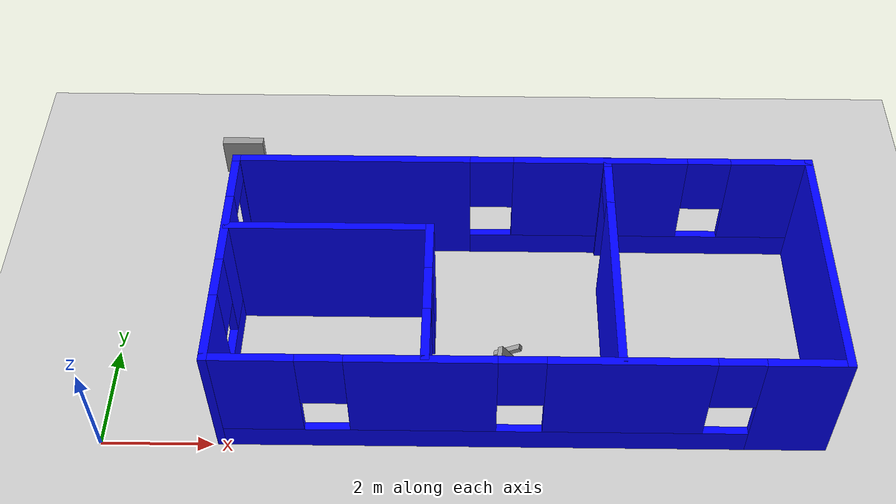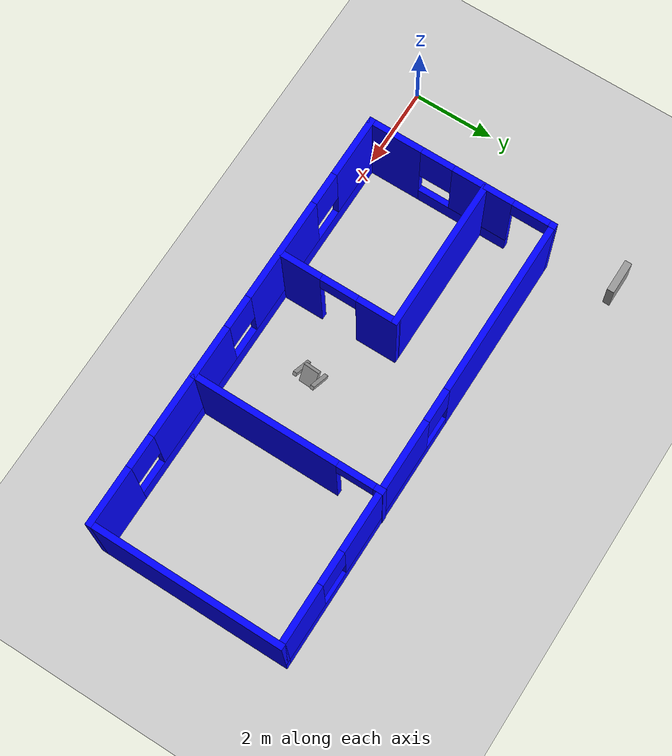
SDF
<sdf version="1.6">
 <world name="default">
  <model name="ground_plane">
   <static>1</static>
   <link name="link">
    <collision name="collision">
     <geometry><plane><normal>0 0 1</normal><size>100 100</size></plane></geometry>
     <surface>
      <contact><collide_bitmask>65535</collide_bitmask></contact>
      <friction><ode><mu>100</mu><mu2>50</mu2></ode></friction>
     </surface>
    </collision>
    <visual name="visual">
     <cast_shadows>0</cast_shadows>
     <geometry><plane><normal>0 0 1</normal><size>100 100</size></plane></geometry>
     <material>
      <script><uri>file://media/materials/scripts/gazebo.material</uri><name>Gazebo/Grey</name></script>
     </material>
    </visual>
   </link>
  </model>
  <model name="building">
   <pose>7.4627 2.38493 0 0 -0 0</pose>
   <link name="Wall_10">
    <collision name="Wall_10_Collision">
     <geometry><box><size>4.75 0.15 2.5</size></box></geometry>
     <pose>0 0 1.25 0 -0 0</pose>
    </collision>
    <visual name="Wall_10_Visual">
     <pose>0 0 1.25 0 -0 0</pose>
     <geometry><box><size>4.75 0.15 2.5</size></box></geometry>
     <material>
      <script><uri>file://media/materials/scripts/gazebo.material</uri><name>Gazebo/Grey</name></script>
      <ambient>0 0 1 1</ambient>
     </material>
     <meta><layer>0</layer></meta>
    </visual>
    <pose>5.3 -0.005 0 0 0 -1.5708</pose>
   </link>
   <link name="Wall_11">
    <pose>0 -2.305 0 0 -0 3.14159</pose>
    <visual name="Wall_11_Visual_0">
     <pose>-4.6525 0 1.25 0 -0 0</pose>
     <geometry><box><size>1.445 0.15 2.5</size></box></geometry>
     <material>
      <script><uri>file://media/materials/scripts/gazebo.material</uri><name>Gazebo/Grey</name></script>
      <ambient>0 0 1 1</ambient>
     </material>
     <meta><layer>0</layer></meta>
    </visual>
    <collision name="Wall_11_Collision_0">
     <geometry><box><size>1.445 0.15 2.5</size></box></geometry>
     <pose>-4.6525 0 1.25 0 -0 0</pose>
    </collision>
    <visual name="Wall_11_Visual_1">
     <pose>0.7225 0 0.25 0 -0 0</pose>
     <geometry><box><size>9.305 0.15 0.5</size></box></geometry>
     <material>
      <script><uri>file://media/materials/scripts/gazebo.material</uri><name>Gazebo/Grey</name></script>
      <ambient>0 0 1 1</ambient>
     </material>
     <meta><layer>0</layer></meta>
    </visual>
    <collision name="Wall_11_Collision_1">
     <geometry><box><size>9.305 0.15 0.5</size></box></geometry>
     <pose>0.7225 0 0.25 0 -0 0</pose>
    </collision>
    <visual name="Wall_11_Visual_2">
     <pose>-1.735 0 1.5 0 -0 0</pose>
     <geometry><box><size>2.79 0.15 2</size></box></geometry>
     <material>
      <script><uri>file://media/materials/scripts/gazebo.material</uri><name>Gazebo/Grey</name></script>
      <ambient>0 0 1 1</ambient>
     </material>
     <meta><layer>0</layer></meta>
    </visual>
    <collision name="Wall_11_Collision_2">
     <geometry><box><size>2.79 0.15 2</size></box></geometry>
     <pose>-1.735 0 1.5 0 -0 0</pose>
    </collision>
    <visual name="Wall_11_Visual_3">
     <pose>1.73 0 1.5 0 -0 0</pose>
     <geometry><box><size>2.54 0.15 2</size></box></geometry>
     <material>
      <script><uri>file://media/materials/scripts/gazebo.material</uri><name>Gazebo/Grey</name></script>
      <ambient>0 0 1 1</ambient>
     </material>
     <meta><layer>0</layer></meta>
    </visual>
    <collision name="Wall_11_Collision_3">
     <geometry><box><size>2.54 0.15 2</size></box></geometry>
     <pose>1.73 0 1.5 0 -0 0</pose>
    </collision>
    <visual name="Wall_11_Visual_4">
     <pose>4.5875 0 1.5 0 -0 0</pose>
     <geometry><box><size>1.575 0.15 2</size></box></geometry>
     <material>
      <script><uri>file://media/materials/scripts/gazebo.material</uri><name>Gazebo/Grey</name></script>
      <ambient>0 0 1 1</ambient>
     </material>
     <meta><layer>0</layer></meta>
    </visual>
    <collision name="Wall_11_Collision_4">
     <geometry><box><size>1.575 0.15 2</size></box></geometry>
     <pose>4.5875 0 1.5 0 -0 0</pose>
    </collision>
    <visual name="Wall_11_Visual_5">
     <pose>-3.53 0 1.9 0 -0 0</pose>
     <geometry><box><size>0.8 0.15 1.2</size></box></geometry>
     <material>
      <script><uri>file://media/materials/scripts/gazebo.material</uri><name>Gazebo/Grey</name></script>
      <ambient>0 0 1 1</ambient>
     </material>
     <meta><layer>0</layer></meta>
    </visual>
    <collision name="Wall_11_Collision_5">
     <geometry><box><size>0.8 0.15 1.2</size></box></geometry>
     <pose>-3.53 0 1.9 0 -0 0</pose>
    </collision>
    <visual name="Wall_11_Visual_6">
     <pose>0.06 0 1.9 0 -0 0</pose>
     <geometry><box><size>0.8 0.15 1.2</size></box></geometry>
     <material>
      <script><uri>file://media/materials/scripts/gazebo.material</uri><name>Gazebo/Grey</name></script>
      <ambient>0 0 1 1</ambient>
     </material>
     <meta><layer>0</layer></meta>
    </visual>
    <collision name="Wall_11_Collision_6">
     <geometry><box><size>0.8 0.15 1.2</size></box></geometry>
     <pose>0.06 0 1.9 0 -0 0</pose>
    </collision>
    <visual name="Wall_11_Visual_7">
     <pose>3.4 0 1.9 0 -0 0</pose>
     <geometry><box><size>0.8 0.15 1.2</size></box></geometry>
     <material>
      <script><uri>file://media/materials/scripts/gazebo.material</uri><name>Gazebo/Grey</name></script>
      <ambient>0 0 1 1</ambient>
     </material>
     <meta><layer>0</layer></meta>
    </visual>
    <collision name="Wall_11_Collision_7">
     <geometry><box><size>0.8 0.15 1.2</size></box></geometry>
     <pose>3.4 0 1.9 0 -0 0</pose>
    </collision>
   </link>
   <link name="Wall_12">
    <pose>-5.3 -0.005 0 0 -0 1.5708</pose>
    <visual name="Wall_12_Visual_0">
     <pose>-1.6825 0 1.25 0 -0 0</pose>
     <geometry><box><size>1.385 0.15 2.5</size></box></geometry>
     <material>
      <script><uri>file://media/materials/scripts/gazebo.material</uri><name>Gazebo/Grey</name></script>
      <ambient>0 0 1 1</ambient>
     </material>
     <meta><layer>0</layer></meta>
    </visual>
    <collision name="Wall_12_Collision_0">
     <geometry><box><size>1.385 0.15 2.5</size></box></geometry>
     <pose>-1.6825 0 1.25 0 -0 0</pose>
    </collision>
    <visual name="Wall_12_Visual_1">
     <pose>2.2925 0 1.25 0 -0 0</pose>
     <geometry><box><size>0.165 0.15 2.5</size></box></geometry>
     <material>
      <script><uri>file://media/materials/scripts/gazebo.material</uri><name>Gazebo/Grey</name></script>
      <ambient>0 0 1 1</ambient>
     </material>
     <meta><layer>0</layer></meta>
    </visual>
    <collision name="Wall_12_Collision_1">
     <geometry><box><size>0.165 0.15 2.5</size></box></geometry>
     <pose>2.2925 0 1.25 0 -0 0</pose>
    </collision>
    <visual name="Wall_12_Visual_2">
     <pose>0.16 0 0.25 0 -0 0</pose>
     <geometry><box><size>2.3 0.15 0.5</size></box></geometry>
     <material>
      <script><uri>file://media/materials/scripts/gazebo.material</uri><name>Gazebo/Grey</name></script>
      <ambient>0 0 1 1</ambient>
     </material>
     <meta><layer>0</layer></meta>
    </visual>
    <collision name="Wall_12_Collision_2">
     <geometry><box><size>2.3 0.15 0.5</size></box></geometry>
     <pose>0.16 0 0.25 0 -0 0</pose>
    </collision>
    <visual name="Wall_12_Visual_3">
     <pose>0.56 0 1.5 0 -0 0</pose>
     <geometry><box><size>1.5 0.15 2</size></box></geometry>
     <material>
      <script><uri>file://media/materials/scripts/gazebo.material</uri><name>Gazebo/Grey</name></script>
      <ambient>0 0 1 1</ambient>
     </material>
     <meta><layer>0</layer></meta>
    </visual>
    <collision name="Wall_12_Collision_3">
     <geometry><box><size>1.5 0.15 2</size></box></geometry>
     <pose>0.56 0 1.5 0 -0 0</pose>
    </collision>
    <visual name="Wall_12_Visual_4">
     <pose>-0.59 0 1.9 0 -0 0</pose>
     <geometry><box><size>0.8 0.15 1.2</size></box></geometry>
     <material>
      <script><uri>file://media/materials/scripts/gazebo.material</uri><name>Gazebo/Grey</name></script>
      <ambient>0 0 1 1</ambient>
     </material>
     <meta><layer>0</layer></meta>
    </visual>
    <collision name="Wall_12_Collision_4">
     <geometry><box><size>0.8 0.15 1.2</size></box></geometry>
     <pose>-0.59 0 1.9 0 -0 0</pose>
    </collision>
    <visual name="Wall_12_Visual_5">
     <pose>1.76 0 2.25 0 -0 0</pose>
     <geometry><box><size>0.9 0.15 0.5</size></box></geometry>
     <material>
      <script><uri>file://media/materials/scripts/gazebo.material</uri><name>Gazebo/Grey</name></script>
      <ambient>0 0 1 1</ambient>
     </material>
     <meta><layer>0</layer></meta>
    </visual>
    <collision name="Wall_12_Collision_5">
     <geometry><box><size>0.9 0.15 0.5</size></box></geometry>
     <pose>1.76 0 2.25 0 -0 0</pose>
    </collision>
   </link>
   <link name="Wall_16">
    <collision name="Wall_16_Collision">
     <geometry><box><size>3.75 0.15 2.5</size></box></geometry>
     <pose>0 0 1.25 0 -0 0</pose>
    </collision>
    <visual name="Wall_16_Visual">
     <pose>0 0 1.25 0 -0 0</pose>
     <geometry><box><size>3.75 0.15 2.5</size></box></geometry>
     <material>
      <script><uri>file://media/materials/scripts/gazebo.material</uri><name>Gazebo/Grey</name></script>
      <ambient>0 0 1 1</ambient>
     </material>
     <meta><layer>0</layer></meta>
    </visual>
    <pose>-3.46 0.605 0 0 -0 0</pose>
   </link>
   <link name="Wall_17">
    <pose>-1.66 -0.82 0 0 0 -1.5708</pose>
    <visual name="Wall_17_Visual_0">
     <pose>-0.9875 0 1.25 0 -0 0</pose>
     <geometry><box><size>1.025 0.15 2.5</size></box></geometry>
     <material>
      <script><uri>file://media/materials/scripts/gazebo.material</uri><name>Gazebo/Grey</name></script>
      <ambient>0 0 1 1</ambient>
     </material>
     <meta><layer>0</layer></meta>
    </visual>
    <collision name="Wall_17_Collision_0">
     <geometry><box><size>1.025 0.15 2.5</size></box></geometry>
     <pose>-0.9875 0 1.25 0 -0 0</pose>
    </collision>
    <visual name="Wall_17_Visual_1">
     <pose>0.9625 0 1.25 0 -0 0</pose>
     <geometry><box><size>1.075 0.15 2.5</size></box></geometry>
     <material>
      <script><uri>file://media/materials/scripts/gazebo.material</uri><name>Gazebo/Grey</name></script>
      <ambient>0 0 1 1</ambient>
     </material>
     <meta><layer>0</layer></meta>
    </visual>
    <collision name="Wall_17_Collision_1">
     <geometry><box><size>1.075 0.15 2.5</size></box></geometry>
     <pose>0.9625 0 1.25 0 -0 0</pose>
    </collision>
    <visual name="Wall_17_Visual_2">
     <pose>-0.025 0 2.25 0 -0 0</pose>
     <geometry><box><size>0.9 0.15 0.5</size></box></geometry>
     <material>
      <script><uri>file://media/materials/scripts/gazebo.material</uri><name>Gazebo/Grey</name></script>
      <ambient>0 0 1 1</ambient>
     </material>
     <meta><layer>0</layer></meta>
    </visual>
    <collision name="Wall_17_Collision_2">
     <geometry><box><size>0.9 0.15 0.5</size></box></geometry>
     <pose>-0.025 0 2.25 0 -0 0</pose>
    </collision>
   </link>
   <link name="Wall_19">
    <pose>1.58 0.005 0 0 0 -1.5708</pose>
    <visual name="Wall_19_Visual_0">
     <pose>-2.2575 0 1.25 0 -0 0</pose>
     <geometry><box><size>0.235 0.15 2.5</size></box></geometry>
     <material>
      <script><uri>file://media/materials/scripts/gazebo.material</uri><name>Gazebo/Grey</name></script>
      <ambient>0 0 1 1</ambient>
     </material>
     <meta><layer>0</layer></meta>
    </visual>
    <collision name="Wall_19_Collision_0">
     <geometry><box><size>0.235 0.15 2.5</size></box></geometry>
     <pose>-2.2575 0 1.25 0 -0 0</pose>
    </collision>
    <visual name="Wall_19_Visual_1">
     <pose>0.5675 0 1.25 0 -0 0</pose>
     <geometry><box><size>3.615 0.15 2.5</size></box></geometry>
     <material>
      <script><uri>file://media/materials/scripts/gazebo.material</uri><name>Gazebo/Grey</name></script>
      <ambient>0 0 1 1</ambient>
     </material>
     <meta><layer>0</layer></meta>
    </visual>
    <collision name="Wall_19_Collision_1">
     <geometry><box><size>3.615 0.15 2.5</size></box></geometry>
     <pose>0.5675 0 1.25 0 -0 0</pose>
    </collision>
    <visual name="Wall_19_Visual_2">
     <pose>-1.69 0 2.25 0 -0 0</pose>
     <geometry><box><size>0.9 0.15 0.5</size></box></geometry>
     <material>
      <script><uri>file://media/materials/scripts/gazebo.material</uri><name>Gazebo/Grey</name></script>
      <ambient>0 0 1 1</ambient>
     </material>
     <meta><layer>0</layer></meta>
    </visual>
    <collision name="Wall_19_Collision_2">
     <geometry><box><size>0.9 0.15 0.5</size></box></geometry>
     <pose>-1.69 0 2.25 0 -0 0</pose>
    </collision>
   </link>
   <link name="Wall_9">
    <pose>0 2.295 0 0 -0 0</pose>
    <visual name="Wall_9_Visual_0">
     <pose>-3.1675 0 1.25 0 -0 0</pose>
     <geometry><box><size>4.415 0.15 2.5</size></box></geometry>
     <material>
      <script><uri>file://media/materials/scripts/gazebo.material</uri><name>Gazebo/Grey</name></script>
      <ambient>0 0 1 1</ambient>
     </material>
     <meta><layer>0</layer></meta>
    </visual>
    <collision name="Wall_9_Collision_0">
     <geometry><box><size>4.415 0.15 2.5</size></box></geometry>
     <pose>-3.1675 0 1.25 0 -0 0</pose>
    </collision>
    <visual name="Wall_9_Visual_1">
     <pose>2.2075 0 0.25 0 -0 0</pose>
     <geometry><box><size>6.335 0.15 0.5</size></box></geometry>
     <material>
      <script><uri>file://media/materials/scripts/gazebo.material</uri><name>Gazebo/Grey</name></script>
      <ambient>0 0 1 1</ambient>
     </material>
     <meta><layer>0</layer></meta>
    </visual>
    <collision name="Wall_9_Collision_1">
     <geometry><box><size>6.335 0.15 0.5</size></box></geometry>
     <pose>2.2075 0 0.25 0 -0 0</pose>
    </collision>
    <visual name="Wall_9_Visual_2">
     <pose>1.45 0 1.5 0 -0 0</pose>
     <geometry><box><size>3.22 0.15 2</size></box></geometry>
     <material>
      <script><uri>file://media/materials/scripts/gazebo.material</uri><name>Gazebo/Grey</name></script>
      <ambient>0 0 1 1</ambient>
     </material>
     <meta><layer>0</layer></meta>
    </visual>
    <collision name="Wall_9_Collision_2">
     <geometry><box><size>3.22 0.15 2</size></box></geometry>
     <pose>1.45 0 1.5 0 -0 0</pose>
    </collision>
    <visual name="Wall_9_Visual_3">
     <pose>4.6175 0 1.5 0 -0 0</pose>
     <geometry><box><size>1.515 0.15 2</size></box></geometry>
     <material>
      <script><uri>file://media/materials/scripts/gazebo.material</uri><name>Gazebo/Grey</name></script>
      <ambient>0 0 1 1</ambient>
     </material>
     <meta><layer>0</layer></meta>
    </visual>
    <collision name="Wall_9_Collision_3">
     <geometry><box><size>1.515 0.15 2</size></box></geometry>
     <pose>4.6175 0 1.5 0 -0 0</pose>
    </collision>
    <visual name="Wall_9_Visual_4">
     <pose>-0.56 0 1.9 0 -0 0</pose>
     <geometry><box><size>0.8 0.15 1.2</size></box></geometry>
     <material>
      <script><uri>file://media/materials/scripts/gazebo.material</uri><name>Gazebo/Grey</name></script>
      <ambient>0 0 1 1</ambient>
     </material>
     <meta><layer>0</layer></meta>
    </visual>
    <collision name="Wall_9_Collision_4">
     <geometry><box><size>0.8 0.15 1.2</size></box></geometry>
     <pose>-0.56 0 1.9 0 -0 0</pose>
    </collision>
    <visual name="Wall_9_Visual_5">
     <pose>3.46 0 1.9 0 -0 0</pose>
     <geometry><box><size>0.8 0.15 1.2</size></box></geometry>
     <material>
      <script><uri>file://media/materials/scripts/gazebo.material</uri><name>Gazebo/Grey</name></script>
      <ambient>0 0 1 1</ambient>
     </material>
     <meta><layer>0</layer></meta>
    </visual>
    <collision name="Wall_9_Collision_5">
     <geometry><box><size>0.8 0.15 1.2</size></box></geometry>
     <pose>3.46 0 1.9 0 -0 0</pose>
    </collision>
   </link>
   <link name="Window_6">
    <collision name="Window_6_Collision">
     <geometry><box><size>0.8 0.17 0.8</size></box></geometry>
     <pose>0 0 0.4 0 -0 0</pose>
    </collision>
    <visual name="Window_6_Visual">
     <pose>0 0 0.4 0 -0 0</pose>
     <geometry><box><size>0.8 0.17 0.8</size></box></geometry>
     <material>
      <script><uri>file://media/materials/scripts/gazebo.material</uri><name>Gazebo/Grey</name></script>
     </material>
    </visual>
    <pose>-5.53041 3.979 0.5 0 -0 0</pose>
   </link>
   <static>1</static>
  </model>
  <model name="robot">
   <link name="link_0">
    <pose>0.01834 -0.001591 0 0 -0 0</pose>
    <inertial>
     <mass>1</mass>
     <inertia>
      <ixx>0.166667</ixx>
      <ixy>0</ixy>
      <ixz>0</ixz>
      <iyy>0.166667</iyy>
      <iyz>0</iyz>
      <izz>0.166667</izz>
     </inertia>
    </inertial>
    <visual name="visual">
     <geometry><box><size>0.5 0.4 0.1</size></box></geometry>
     <material>
      <lighting>1</lighting>
      <script><uri>file://media/materials/scripts/gazebo.material</uri><name>Gazebo/Grey</name></script>
      <shader type="pixel"><normal_map>__default__</normal_map></shader>
      <ambient>0.3 0.3 0.3 1</ambient>
      <diffuse>0.7 0.7 0.7 1</diffuse>
      <specular>0.01 0.01 0.01 1</specular>
      <emissive>0 0 0 1</emissive>
     </material>
    </visual>
    <collision name="collision">
     <geometry><box><size>0.5 0.4 0.1</size></box></geometry>
     <surface>
      <friction>
       <ode><mu>1</mu><mu2>1</mu2><fdir1>0 0 0</fdir1><slip1>0</slip1><slip2>0</slip2></ode>
       <torsional>
        <coefficient>1</coefficient>
        <patch_radius>0</patch_radius>
        <surface_radius>0</surface_radius>
        <use_patch_radius>1</use_patch_radius>
        <ode><slip>0</slip></ode>
       </torsional>
      </friction>
      <bounce><restitution_coefficient>0</restitution_coefficient><threshold>1e+06</threshold></bounce>
      <contact>
       <collide_without_contact>0</collide_without_contact>
       <collide_without_contact_bitmask>1</collide_without_contact_bitmask>
       <collide_bitmask>1</collide_bitmask>
       <ode>
        <soft_cfm>0</soft_cfm>
        <soft_erp>0.2</soft_erp>
        <kp>1e+13</kp>
        <kd>1</kd>
        <max_vel>0.01</max_vel>
        <min_depth>0</min_depth>
       </ode>
       <bullet>
        <split_impulse>1</split_impulse>
        <split_impulse_penetration_threshold>-0.01</split_impulse_penetration_threshold>
        <soft_cfm>0</soft_cfm>
        <soft_erp>0.2</soft_erp>
        <kp>1e+13</kp>
        <kd>1</kd>
       </bullet>
      </contact>
     </surface>
    </collision>
   </link>
   <link name="link_4">
    <pose>-0.03668 -0.246818 0 0 -0 0</pose>
    <inertial>
     <mass>1</mass>
     <inertia>
      <ixx>0.166667</ixx>
      <ixy>0</ixy>
      <ixz>0</ixz>
      <iyy>0.166667</iyy>
      <iyz>0</iyz>
      <izz>0.166667</izz>
     </inertia>
    </inertial>
    <visual name="visual">
     <geometry><box><size>0.1 0.1 0.55</size></box></geometry>
     <material>
      <lighting>1</lighting>
      <script><uri>file://media/materials/scripts/gazebo.material</uri><name>Gazebo/Grey</name></script>
      <shader type="pixel"><normal_map>__default__</normal_map></shader>
      <ambient>0.3 0.3 0.3 1</ambient>
      <diffuse>0.7 0.7 0.7 1</diffuse>
      <specular>0.01 0.01 0.01 1</specular>
      <emissive>0 0 0 1</emissive>
     </material>
    </visual>
    <collision name="collision">
     <geometry><box><size>0.1 0.1 0.55</size></box></geometry>
     <surface>
      <friction>
       <ode><mu>1</mu><mu2>1</mu2><fdir1>0 0 0</fdir1><slip1>0</slip1><slip2>0</slip2></ode>
       <torsional>
        <coefficient>1</coefficient>
        <patch_radius>0</patch_radius>
        <surface_radius>0</surface_radius>
        <use_patch_radius>1</use_patch_radius>
        <ode><slip>0</slip></ode>
       </torsional>
      </friction>
      <bounce><restitution_coefficient>0</restitution_coefficient><threshold>1e+06</threshold></bounce>
      <contact>
       <collide_without_contact>0</collide_without_contact>
       <collide_without_contact_bitmask>1</collide_without_contact_bitmask>
       <collide_bitmask>1</collide_bitmask>
       <ode>
        <soft_cfm>0</soft_cfm>
        <soft_erp>0.2</soft_erp>
        <kp>1e+13</kp>
        <kd>1</kd>
        <max_vel>0.01</max_vel>
        <min_depth>0</min_depth>
       </ode>
       <bullet>
        <split_impulse>1</split_impulse>
        <split_impulse_penetration_threshold>-0.01</split_impulse_penetration_threshold>
        <soft_cfm>0</soft_cfm>
        <soft_erp>0.2</soft_erp>
        <kp>1e+13</kp>
        <kd>1</kd>
       </bullet>
      </contact>
     </surface>
    </collision>
   </link>
   <link name="link_4_clone">
    <pose>0.01834 0.248409 0 0 -0 0</pose>
    <inertial>
     <mass>1</mass>
     <inertia>
      <ixx>0.166667</ixx>
      <ixy>0</ixy>
      <ixz>0</ixz>
      <iyy>0.166667</iyy>
      <iyz>0</iyz>
      <izz>0.166667</izz>
     </inertia>
    </inertial>
    <visual name="visual">
     <geometry><box><size>0.1 0.1 0.55</size></box></geometry>
     <material>
      <lighting>1</lighting>
      <script><uri>file://media/materials/scripts/gazebo.material</uri><name>Gazebo/Grey</name></script>
      <shader type="pixel"><normal_map>__default__</normal_map></shader>
      <ambient>0.3 0.3 0.3 1</ambient>
      <diffuse>0.7 0.7 0.7 1</diffuse>
      <specular>0.01 0.01 0.01 1</specular>
      <emissive>0 0 0 1</emissive>
     </material>
    </visual>
    <collision name="collision">
     <geometry><box><size>0.1 0.1 0.55</size></box></geometry>
     <surface>
      <friction>
       <ode><mu>1</mu><mu2>1</mu2><fdir1>0 0 0</fdir1><slip1>0</slip1><slip2>0</slip2></ode>
       <torsional>
        <coefficient>1</coefficient>
        <patch_radius>0</patch_radius>
        <surface_radius>0</surface_radius>
        <use_patch_radius>1</use_patch_radius>
        <ode><slip>0</slip></ode>
       </torsional>
      </friction>
      <bounce><restitution_coefficient>0</restitution_coefficient><threshold>1e+06</threshold></bounce>
      <contact>
       <collide_without_contact>0</collide_without_contact>
       <collide_without_contact_bitmask>1</collide_without_contact_bitmask>
       <collide_bitmask>1</collide_bitmask>
       <ode>
        <soft_cfm>0</soft_cfm>
        <soft_erp>0.2</soft_erp>
        <kp>1e+13</kp>
        <kd>1</kd>
        <max_vel>0.01</max_vel>
        <min_depth>0</min_depth>
       </ode>
       <bullet>
        <split_impulse>1</split_impulse>
        <split_impulse_penetration_threshold>-0.01</split_impulse_penetration_threshold>
        <soft_cfm>0</soft_cfm>
        <soft_erp>0.2</soft_erp>
        <kp>1e+13</kp>
        <kd>1</kd>
       </bullet>
      </contact>
     </surface>
    </collision>
   </link>
   <joint name="link_0_JOINT_0" type="revolute">
    <parent>link_0</parent>
    <child>link_4</child>
    <axis>
     <xyz>0 1 0</xyz>
     <use_parent_model_frame>0</use_parent_model_frame>
     <limit>
      <lower>-1.79769e+308</lower>
      <upper>1.79769e+308</upper>
      <effort>-1</effort>
      <velocity>-1</velocity>
     </limit>
     <dynamics>
      <spring_reference>0</spring_reference>
      <spring_stiffness>0</spring_stiffness>
      <damping>0</damping>
     </dynamics>
    </axis>
    <physics>
     <ode><limit><cfm>0</cfm><erp>0.2</erp></limit><suspension><cfm>0</cfm><erp>0.2</erp></suspension></ode>
    </physics>
   </joint>
   <joint name="link_0_JOINT_2" type="revolute">
    <parent>link_0</parent>
    <child>link_4_clone</child>
    <axis>
     <xyz>0 1 0</xyz>
     <use_parent_model_frame>0</use_parent_model_frame>
     <limit>
      <lower>-1.79769e+308</lower>
      <upper>1.79769e+308</upper>
      <effort>-1</effort>
      <velocity>-1</velocity>
     </limit>
     <dynamics>
      <spring_reference>0</spring_reference>
      <spring_stiffness>0</spring_stiffness>
      <damping>0</damping>
     </dynamics>
    </axis>
    <physics>
     <ode><limit><cfm>0</cfm><erp>0.2</erp></limit><suspension><cfm>0</cfm><erp>0.2</erp></suspension></ode>
    </physics>
   </joint>
   <static>0</static>
   <pose>7.20212 1.67779 0.270698 0.172017 0.995093 0.073438</pose>
  </model>
 </world>
</sdf>
